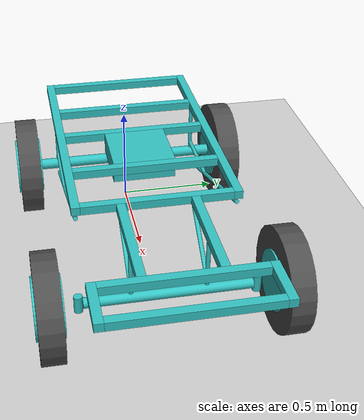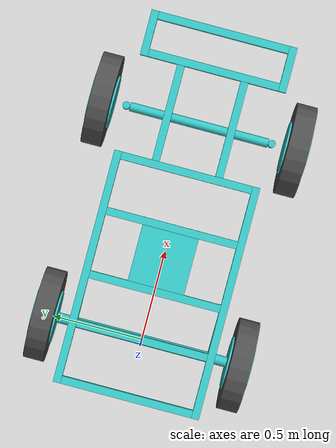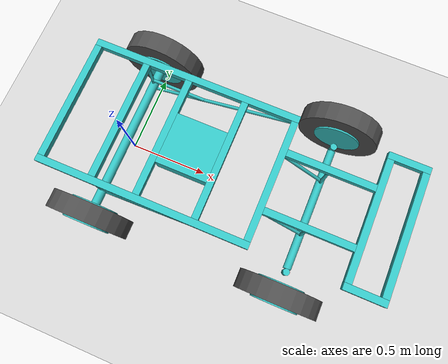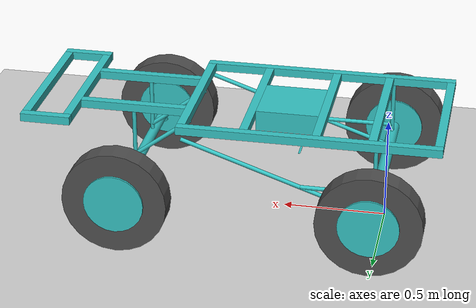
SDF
<sdf version="1.7">
 <world name="default">
  <model name="ground_plane">
   <static>1</static>
   <link name="link">
    <collision name="collision">
     <geometry><plane><normal>0 0 1</normal><size>100 100</size></plane></geometry>
     <surface><friction><ode><mu>100</mu><mu2>50</mu2></ode></friction></surface>
    </collision>
    <visual name="visual">
     <cast_shadows>0</cast_shadows>
     <geometry><plane><normal>0 0 1</normal><size>100 100</size></plane></geometry>
     <material>
      <script><uri>file://media/materials/scripts/gazebo.material</uri><name>Gazebo/Grey</name></script>
     </material>
    </visual>
   </link>
  </model>
  <model name="beetle">
   <link name="base_link">
    <inertial>
     <pose>0.69185 -0 -9.5e-05 0 -0 0</pose>
     <mass>40.02</mass>
     <inertia>
      <ixx>2.03423</ixx>
      <ixy>-7.50105e-20</ixy>
      <ixz>-0.00114323</ixz>
      <iyy>13.2082</iyy>
      <iyz>1.02948e-23</iyz>
      <izz>15.2303</izz>
     </inertia>
    </inertial>
    <collision name="base_link_collision">
     <pose>0.692 0 0 0 -0 0</pose>
     <geometry><box><size>1.99 0.78 0.04</size></box></geometry>
    </collision>
    <visual name="base_link_visual">
     <pose>0.317 0.37 0 0 -0 0</pose>
     <geometry><box><size>1.24 0.04 0.04</size></box></geometry>
     <material>
      <script><name>Gazebo/Turquoise</name><uri>file://media/materials/scripts/gazebo.material</uri></script>
     </material>
    </visual>
    <visual name="base_link_visual_1">
     <pose>0.317 -0.37 0 0 -0 0</pose>
     <geometry><box><size>1.24 0.04 0.04</size></box></geometry>
     <material>
      <script><name>Gazebo/Turquoise</name><uri>file://media/materials/scripts/gazebo.material</uri></script>
     </material>
    </visual>
    <visual name="base_link_visual_2">
     <pose>-0.283 0 0 0 -0 0</pose>
     <geometry><box><size>0.04 0.7 0.04</size></box></geometry>
     <material>
      <script><name>Gazebo/Turquoise</name><uri>file://media/materials/scripts/gazebo.material</uri></script>
     </material>
    </visual>
    <visual name="base_link_visual_3">
     <pose>0.02 0 0 0 -0 0</pose>
     <geometry><box><size>0.04 0.7 0.04</size></box></geometry>
     <material>
      <script><name>Gazebo/Turquoise</name><uri>file://media/materials/scripts/gazebo.material</uri></script>
     </material>
    </visual>
    <visual name="base_link_visual_4">
     <pose>0.281 0 0 0 -0 0</pose>
     <geometry><box><size>0.04 0.7 0.04</size></box></geometry>
     <material>
      <script><name>Gazebo/Turquoise</name><uri>file://media/materials/scripts/gazebo.material</uri></script>
     </material>
    </visual>
    <visual name="base_link_visual_5">
     <pose>0.621 0 0 0 -0 0</pose>
     <geometry><box><size>0.04 0.7 0.04</size></box></geometry>
     <material>
      <script><name>Gazebo/Turquoise</name><uri>file://media/materials/scripts/gazebo.material</uri></script>
     </material>
    </visual>
    <visual name="base_link_visual_6">
     <pose>0.917 0 0 0 -0 0</pose>
     <geometry><box><size>0.04 0.7 0.04</size></box></geometry>
     <material>
      <script><name>Gazebo/Turquoise</name><uri>file://media/materials/scripts/gazebo.material</uri></script>
     </material>
    </visual>
    <visual name="base_link_visual_7">
     <pose>1.192 0.17 0 0 -0 0</pose>
     <geometry><box><size>0.51 0.04 0.04</size></box></geometry>
     <material>
      <script><name>Gazebo/Turquoise</name><uri>file://media/materials/scripts/gazebo.material</uri></script>
     </material>
    </visual>
    <visual name="base_link_visual_8">
     <pose>1.192 -0.17 0 0 -0 0</pose>
     <geometry><box><size>0.51 0.04 0.04</size></box></geometry>
     <material>
      <script><name>Gazebo/Turquoise</name><uri>file://media/materials/scripts/gazebo.material</uri></script>
     </material>
    </visual>
    <visual name="base_link_visual_9">
     <pose>1.567 0.37 0 0 -0 0</pose>
     <geometry><box><size>0.24 0.04 0.04</size></box></geometry>
     <material>
      <script><name>Gazebo/Turquoise</name><uri>file://media/materials/scripts/gazebo.material</uri></script>
     </material>
    </visual>
    <visual name="base_link_visual_10">
     <pose>1.567 -0.37 0 0 -0 0</pose>
     <geometry><box><size>0.24 0.04 0.04</size></box></geometry>
     <material>
      <script><name>Gazebo/Turquoise</name><uri>file://media/materials/scripts/gazebo.material</uri></script>
     </material>
    </visual>
    <visual name="base_link_visual_11">
     <pose>1.467 0 0 0 -0 0</pose>
     <geometry><box><size>0.04 0.7 0.04</size></box></geometry>
     <material>
      <script><name>Gazebo/Turquoise</name><uri>file://media/materials/scripts/gazebo.material</uri></script>
     </material>
    </visual>
    <visual name="base_link_visual_12">
     <pose>1.667 0 0 0 -0 0</pose>
     <geometry><box><size>0.04 0.7 0.04</size></box></geometry>
     <material>
      <script><name>Gazebo/Turquoise</name><uri>file://media/materials/scripts/gazebo.material</uri></script>
     </material>
    </visual>
    <visual name="base_link_visual_13">
     <pose>1.19 0.17 -0.15025 3.14159 -0 3.14159</pose>
     <geometry><cylinder><length>0.2605</length><radius>0.01</radius></cylinder></geometry>
     <material>
      <script><name>Gazebo/Turquoise</name><uri>file://media/materials/scripts/gazebo.material</uri></script>
     </material>
    </visual>
    <visual name="base_link_visual_14">
     <pose>1.19 -0.17 -0.15025 3.14159 -0 3.14159</pose>
     <geometry><cylinder><length>0.2605</length><radius>0.01</radius></cylinder></geometry>
     <material>
      <script><name>Gazebo/Turquoise</name><uri>file://media/materials/scripts/gazebo.material</uri></script>
     </material>
    </visual>
    <visual name="base_link_visual_15">
     <pose>1.053 0.17 -0.1525 3.14159 0.928464 3.14159</pose>
     <geometry><cylinder><length>0.3422</length><radius>0.01</radius></cylinder></geometry>
     <material>
      <script><name>Gazebo/Turquoise</name><uri>file://media/materials/scripts/gazebo.material</uri></script>
     </material>
    </visual>
    <visual name="base_link_visual_16">
     <pose>1.053 -0.17 -0.1525 3.14159 0.928464 3.14159</pose>
     <geometry><cylinder><length>0.3422</length><radius>0.01</radius></cylinder></geometry>
     <material>
      <script><name>Gazebo/Turquoise</name><uri>file://media/materials/scripts/gazebo.material</uri></script>
     </material>
    </visual>
    <visual name="base_link_visual_17">
     <pose>0 0.37 -0.1485 3.14159 -0 3.14159</pose>
     <geometry><cylinder><length>0.257</length><radius>0.01</radius></cylinder></geometry>
     <material>
      <script><name>Gazebo/Turquoise</name><uri>file://media/materials/scripts/gazebo.material</uri></script>
     </material>
    </visual>
    <visual name="base_link_visual_18">
     <pose>0 -0.37 -0.1485 3.14159 -0 3.14159</pose>
     <geometry><cylinder><length>0.257</length><radius>0.01</radius></cylinder></geometry>
     <material>
      <script><name>Gazebo/Turquoise</name><uri>file://media/materials/scripts/gazebo.material</uri></script>
     </material>
    </visual>
    <visual name="base_link_visual_19">
     <pose>0.458 0.37 -0.2075 3.14159 -1.23958 3.14159</pose>
     <geometry><cylinder><length>0.968649</length><radius>0.01</radius></cylinder></geometry>
     <material>
      <script><name>Gazebo/Turquoise</name><uri>file://media/materials/scripts/gazebo.material</uri></script>
     </material>
    </visual>
    <visual name="base_link_visual_20">
     <pose>0.458 -0.37 -0.2075 3.14159 -1.23958 3.14159</pose>
     <geometry><cylinder><length>0.968649</length><radius>0.01</radius></cylinder></geometry>
     <material>
      <script><name>Gazebo/Turquoise</name><uri>file://media/materials/scripts/gazebo.material</uri></script>
     </material>
    </visual>
    <visual name="base_link_visual_21">
     <pose>0.174476 0.37 -0.245 3.14159 -1.57079 3.14159</pose>
     <geometry><cylinder><length>0.348952</length><radius>0.01</radius></cylinder></geometry>
     <material>
      <script><name>Gazebo/Turquoise</name><uri>file://media/materials/scripts/gazebo.material</uri></script>
     </material>
    </visual>
    <visual name="base_link_visual_22">
     <pose>0.174476 -0.37 -0.245 3.14159 -1.57079 3.14159</pose>
     <geometry><cylinder><length>0.348952</length><radius>0.01</radius></cylinder></geometry>
     <material>
      <script><name>Gazebo/Turquoise</name><uri>file://media/materials/scripts/gazebo.material</uri></script>
     </material>
    </visual>
    <visual name="base_link_visual_23">
     <pose>1.19 0 -0.305 1.5708 -0 0</pose>
     <geometry><cylinder><length>0.763</length><radius>0.0245</radius></cylinder></geometry>
     <material>
      <script><name>Gazebo/Turquoise</name><uri>file://media/materials/scripts/gazebo.material</uri></script>
     </material>
    </visual>
    <visual name="base_link_visual_24">
     <pose>0 0 -0.305 1.5708 -0 0</pose>
     <geometry><cylinder><length>0.956</length><radius>0.028</radius></cylinder></geometry>
     <material>
      <script><name>Gazebo/Turquoise</name><uri>file://media/materials/scripts/gazebo.material</uri></script>
     </material>
    </visual>
    <visual name="base_link_visual_25">
     <pose>0.451 0 -0.03 0 -0 0</pose>
     <geometry><box><size>0.3 0.3 0.1</size></box></geometry>
     <material>
      <script><name>Gazebo/Turquoise</name><uri>file://media/materials/scripts/gazebo.material</uri></script>
     </material>
    </visual>
    <visual name="base_link_fixed_joint_lump__gps_link_visual_26">
     <pose>0.391 -0.09 -0.19 0 -0 0</pose>
     <geometry><box><size>0.01 0.01 0.002</size></box></geometry>
     <material>
      <script><name>Gazebo/Turquoise</name><uri>file://media/materials/scripts/gazebo.material</uri></script>
     </material>
    </visual>
    <visual name="base_link_fixed_joint_lump__imu_link_visual_27">
     <pose>0.391 0.09 -0.19 0 -0 0</pose>
     <geometry><box><size>0.01 0.1 0.002</size></box></geometry>
     <material>
      <script><name>Gazebo/Turquoise</name><uri>file://media/materials/scripts/gazebo.material</uri></script>
     </material>
    </visual>
    <sensor name="gps_sensor" type="gps">
     <always_on>1</always_on>
     <update_rate>1</update_rate>
     <plugin name="gps_controller" filename="libgazebo_ros_gps_sensor.so">
      <ros><remapping>gps_controller/out:=gps</remapping></ros>
      <frame_name>gps_link</frame_name>
      <offset>0 0 0</offset>
      <drift>0.001 0.001 0.001</drift>
      <gaussianNoise>0.05 0.05 0.05</gaussianNoise>
      <velocityDrift>0.001 0.001 0.001</velocityDrift>
      <velocityGaussianNoise>0.5 0.5 0.5</velocityGaussianNoise>
     </plugin>
     <pose>0.391 -0.09 -0.19 0 -0 0</pose>
    </sensor>
    <sensor name="imu_sensor" type="imu">
     <plugin name="imu_plugin" filename="libgazebo_ros_imu_sensor.so">
      <ros><remapping>~/out:=/imu</remapping></ros>
      <initial_orientation_as_reference>0</initial_orientation_as_reference>
     </plugin>
     <always_on>1</always_on>
     <update_rate>100</update_rate>
     <visualize>1</visualize>
     <imu>
      <angular_velocity>
       <x>
        <noise type="gaussian">
         <mean>0</mean>
         <stddev>0.0002</stddev>
         <bias_mean>7.5e-06</bias_mean>
         <bias_stddev>8e-07</bias_stddev>
        </noise>
       </x>
       <y>
        <noise type="gaussian">
         <mean>0</mean>
         <stddev>0.0002</stddev>
         <bias_mean>7.5e-06</bias_mean>
         <bias_stddev>8e-07</bias_stddev>
        </noise>
       </y>
       <z>
        <noise type="gaussian">
         <mean>0</mean>
         <stddev>0.0002</stddev>
         <bias_mean>7.5e-06</bias_mean>
         <bias_stddev>8e-07</bias_stddev>
        </noise>
       </z>
      </angular_velocity>
      <linear_acceleration>
       <x>
        <noise type="gaussian">
         <mean>0</mean>
         <stddev>0.017</stddev>
         <bias_mean>0.1</bias_mean>
         <bias_stddev>0.001</bias_stddev>
        </noise>
       </x>
       <y>
        <noise type="gaussian">
         <mean>0</mean>
         <stddev>0.017</stddev>
         <bias_mean>0.1</bias_mean>
         <bias_stddev>0.001</bias_stddev>
        </noise>
       </y>
       <z>
        <noise type="gaussian">
         <mean>0</mean>
         <stddev>0.017</stddev>
         <bias_mean>0.1</bias_mean>
         <bias_stddev>0.001</bias_stddev>
        </noise>
       </z>
      </linear_acceleration>
     </imu>
     <pose>0.391 0.09 -0.19 0 -0 0</pose>
    </sensor>
   </link>
   <joint name="left_steering_joint" type="revolute">
    <pose relative_to="base_link">1.19 0.4015 0 0 -0 0</pose>
    <parent>base_link</parent>
    <child>left_steering_link</child>
    <axis>
     <xyz>0 0 1</xyz>
     <limit><lower>-1</lower><upper>1</upper><effort>1000</effort><velocity>0.5</velocity></limit>
     <dynamics>
      <damping>20</damping>
      <friction>0.5886</friction>
      <spring_reference>0</spring_reference>
      <spring_stiffness>0</spring_stiffness>
     </dynamics>
    </axis>
   </joint>
   <link name="left_steering_link">
    <pose relative_to="left_steering_joint">0 0 0 0 -0 0</pose>
    <inertial>
     <pose>0 0 -0.305 0 -0 0</pose>
     <mass>0.8</mass>
     <inertia>
      <ixx>0.000528267</ixx>
      <ixy>0</ixy>
      <ixz>0</ixz>
      <iyy>0.000528267</iyy>
      <iyz>0</iyz>
      <izz>0.00016</izz>
     </inertia>
    </inertial>
    <visual name="left_steering_link_visual">
     <pose>0 0 -0.305 0 -0 0</pose>
     <geometry><cylinder><length>0.082</length><radius>0.02</radius></cylinder></geometry>
     <material>
      <script><name>Gazebo/Turquoise</name><uri>file://media/materials/scripts/gazebo.material</uri></script>
     </material>
    </visual>
   </link>
   <joint name="front_left_wheel_joint" type="revolute">
    <pose relative_to="left_steering_link">0 0.1315 -0.305 -1.5708 0 0</pose>
    <parent>left_steering_link</parent>
    <child>front_left_wheel_link</child>
    <axis>
     <xyz>0 0 1</xyz>
     <limit><lower>-1e+16</lower><upper>1e+16</upper></limit>
     <dynamics>
      <damping>10</damping>
      <friction>0.5886</friction>
      <spring_reference>0</spring_reference>
      <spring_stiffness>0</spring_stiffness>
     </dynamics>
    </axis>
   </joint>
   <link name="front_left_wheel_link">
    <pose relative_to="front_left_wheel_joint">0 0 0 0 -0 0</pose>
    <inertial>
     <mass>13</mass>
     <inertia>
      <ixx>0.137106</ixx>
      <ixy>0</ixy>
      <ixz>0</ixz>
      <iyy>0.137106</iyy>
      <iyz>0</iyz>
      <izz>0.195995</izz>
     </inertia>
    </inertial>
    <collision name="front_left_wheel_link_collision">
     <geometry><cylinder><length>0.11</length><radius>0.25</radius></cylinder></geometry>
    </collision>
    <visual name="front_left_wheel_link_visual">
     <geometry><cylinder><length>0.11</length><radius>0.25</radius></cylinder></geometry>
     <material>
      <script><name>Gazebo/DarkGrey</name><uri>file://media/materials/scripts/gazebo.material</uri></script>
     </material>
    </visual>
    <visual name="front_left_wheel_link_fixed_joint_lump__front_left_wheel_inner_rim_link_visual_1">
     <pose>0 0 -0.06 0 -0 0</pose>
     <geometry><cylinder><length>0.01</length><radius>0.143</radius></cylinder></geometry>
     <material>
      <script><name>Gazebo/Turquoise</name><uri>file://media/materials/scripts/gazebo.material</uri></script>
     </material>
    </visual>
    <visual name="front_left_wheel_link_fixed_joint_lump__front_left_wheel_outer_rim_link_visual_2">
     <pose>0 0 0.06 0 -0 0</pose>
     <geometry><cylinder><length>0.01</length><radius>0.143</radius></cylinder></geometry>
     <material>
      <script><name>Gazebo/Turquoise</name><uri>file://media/materials/scripts/gazebo.material</uri></script>
     </material>
    </visual>
   </link>
   <joint name="rear_left_wheel_joint" type="revolute">
    <pose relative_to="base_link">0 0.533 -0.305 -1.5708 0 0</pose>
    <parent>base_link</parent>
    <child>rear_left_wheel_link</child>
    <axis>
     <xyz>0 0 1</xyz>
     <limit><lower>-1e+16</lower><upper>1e+16</upper></limit>
     <dynamics>
      <damping>10</damping>
      <friction>0.5886</friction>
      <spring_reference>0</spring_reference>
      <spring_stiffness>0</spring_stiffness>
     </dynamics>
    </axis>
   </joint>
   <link name="rear_left_wheel_link">
    <pose relative_to="rear_left_wheel_joint">0 0 0 0 -0 0</pose>
    <inertial>
     <mass>13</mass>
     <inertia>
      <ixx>0.137106</ixx>
      <ixy>0</ixy>
      <ixz>0</ixz>
      <iyy>0.137106</iyy>
      <iyz>0</iyz>
      <izz>0.195995</izz>
     </inertia>
    </inertial>
    <collision name="rear_left_wheel_link_collision">
     <geometry><cylinder><length>0.11</length><radius>0.25</radius></cylinder></geometry>
    </collision>
    <visual name="rear_left_wheel_link_visual">
     <geometry><cylinder><length>0.11</length><radius>0.25</radius></cylinder></geometry>
     <material>
      <script><name>Gazebo/DarkGrey</name><uri>file://media/materials/scripts/gazebo.material</uri></script>
     </material>
    </visual>
    <visual name="rear_left_wheel_link_fixed_joint_lump__rear_left_wheel_inner_rim_link_visual_1">
     <pose>0 0 -0.06 0 -0 0</pose>
     <geometry><cylinder><length>0.01</length><radius>0.143</radius></cylinder></geometry>
     <material>
      <script><name>Gazebo/Turquoise</name><uri>file://media/materials/scripts/gazebo.material</uri></script>
     </material>
    </visual>
    <visual name="rear_left_wheel_link_fixed_joint_lump__rear_left_wheel_outer_rim_link_visual_2">
     <pose>0 0 0.06 0 -0 0</pose>
     <geometry><cylinder><length>0.01</length><radius>0.143</radius></cylinder></geometry>
     <material>
      <script><name>Gazebo/Turquoise</name><uri>file://media/materials/scripts/gazebo.material</uri></script>
     </material>
    </visual>
   </link>
   <joint name="rear_right_wheel_joint" type="revolute">
    <pose relative_to="base_link">0 -0.533 -0.305 -1.5708 0 0</pose>
    <parent>base_link</parent>
    <child>rear_right_wheel_link</child>
    <axis>
     <xyz>0 0 1</xyz>
     <limit><lower>-1e+16</lower><upper>1e+16</upper></limit>
     <dynamics>
      <damping>10</damping>
      <friction>0.5886</friction>
      <spring_reference>0</spring_reference>
      <spring_stiffness>0</spring_stiffness>
     </dynamics>
    </axis>
   </joint>
   <link name="rear_right_wheel_link">
    <pose relative_to="rear_right_wheel_joint">0 0 0 0 -0 0</pose>
    <inertial>
     <mass>13</mass>
     <inertia>
      <ixx>0.137106</ixx>
      <ixy>0</ixy>
      <ixz>0</ixz>
      <iyy>0.137106</iyy>
      <iyz>0</iyz>
      <izz>0.195995</izz>
     </inertia>
    </inertial>
    <collision name="rear_right_wheel_link_collision">
     <geometry><cylinder><length>0.11</length><radius>0.25</radius></cylinder></geometry>
    </collision>
    <visual name="rear_right_wheel_link_visual">
     <geometry><cylinder><length>0.11</length><radius>0.25</radius></cylinder></geometry>
     <material>
      <script><name>Gazebo/DarkGrey</name><uri>file://media/materials/scripts/gazebo.material</uri></script>
     </material>
    </visual>
    <visual name="rear_right_wheel_link_fixed_joint_lump__rear_right_wheel_inner_rim_link_visual_1">
     <pose>0 0 0.06 0 -0 0</pose>
     <geometry><cylinder><length>0.01</length><radius>0.143</radius></cylinder></geometry>
     <material>
      <script><name>Gazebo/Turquoise</name><uri>file://media/materials/scripts/gazebo.material</uri></script>
     </material>
    </visual>
    <visual name="rear_right_wheel_link_fixed_joint_lump__rear_right_wheel_outer_rim_link_visual_2">
     <pose>0 0 -0.06 0 -0 0</pose>
     <geometry><cylinder><length>0.01</length><radius>0.143</radius></cylinder></geometry>
     <material>
      <script><name>Gazebo/Turquoise</name><uri>file://media/materials/scripts/gazebo.material</uri></script>
     </material>
    </visual>
   </link>
   <joint name="right_steering_joint" type="revolute">
    <pose relative_to="base_link">1.19 -0.4015 0 0 -0 0</pose>
    <parent>base_link</parent>
    <child>right_steering_link</child>
    <axis>
     <xyz>0 0 1</xyz>
     <limit><lower>-1</lower><upper>1</upper><effort>1000</effort><velocity>0.5</velocity></limit>
     <dynamics>
      <damping>20</damping>
      <friction>0.5886</friction>
      <spring_reference>0</spring_reference>
      <spring_stiffness>0</spring_stiffness>
     </dynamics>
    </axis>
   </joint>
   <link name="right_steering_link">
    <pose relative_to="right_steering_joint">0 0 0 0 -0 0</pose>
    <inertial>
     <pose>0 0 -0.305 0 -0 0</pose>
     <mass>0.8</mass>
     <inertia>
      <ixx>0.000528267</ixx>
      <ixy>0</ixy>
      <ixz>0</ixz>
      <iyy>0.000528267</iyy>
      <iyz>0</iyz>
      <izz>0.00016</izz>
     </inertia>
    </inertial>
    <visual name="right_steering_link_visual">
     <pose>0 0 -0.305 0 -0 0</pose>
     <geometry><cylinder><length>0.082</length><radius>0.02</radius></cylinder></geometry>
     <material>
      <script><name>Gazebo/Turquoise</name><uri>file://media/materials/scripts/gazebo.material</uri></script>
     </material>
    </visual>
   </link>
   <joint name="front_right_wheel_joint" type="revolute">
    <pose relative_to="right_steering_link">0 -0.1315 -0.305 -1.5708 0 0</pose>
    <parent>right_steering_link</parent>
    <child>front_right_wheel_link</child>
    <axis>
     <xyz>0 0 1</xyz>
     <limit><lower>-1e+16</lower><upper>1e+16</upper></limit>
     <dynamics>
      <damping>10</damping>
      <friction>0.5886</friction>
      <spring_reference>0</spring_reference>
      <spring_stiffness>0</spring_stiffness>
     </dynamics>
    </axis>
   </joint>
   <link name="front_right_wheel_link">
    <pose relative_to="front_right_wheel_joint">0 0 0 0 -0 0</pose>
    <inertial>
     <mass>13</mass>
     <inertia>
      <ixx>0.137106</ixx>
      <ixy>0</ixy>
      <ixz>0</ixz>
      <iyy>0.137106</iyy>
      <iyz>0</iyz>
      <izz>0.195995</izz>
     </inertia>
    </inertial>
    <collision name="front_right_wheel_link_collision">
     <geometry><cylinder><length>0.11</length><radius>0.25</radius></cylinder></geometry>
    </collision>
    <visual name="front_right_wheel_link_visual">
     <geometry><cylinder><length>0.11</length><radius>0.25</radius></cylinder></geometry>
     <material>
      <script><name>Gazebo/DarkGrey</name><uri>file://media/materials/scripts/gazebo.material</uri></script>
     </material>
    </visual>
    <visual name="front_right_wheel_link_fixed_joint_lump__front_right_wheel_inner_rim_link_visual_1">
     <pose>0 0 0.06 0 -0 0</pose>
     <geometry><cylinder><length>0.01</length><radius>0.143</radius></cylinder></geometry>
     <material>
      <script><name>Gazebo/Turquoise</name><uri>file://media/materials/scripts/gazebo.material</uri></script>
     </material>
    </visual>
    <visual name="front_right_wheel_link_fixed_joint_lump__front_right_wheel_outer_rim_link_visual_2">
     <pose>0 0 -0.06 0 -0 0</pose>
     <geometry><cylinder><length>0.01</length><radius>0.143</radius></cylinder></geometry>
     <material>
      <script><name>Gazebo/Turquoise</name><uri>file://media/materials/scripts/gazebo.material</uri></script>
     </material>
    </visual>
   </link>
   <static>0</static>
   <plugin name="gazebo_ros2_control" filename="libgazebo_ros2_control.so">
    <robot_param>robot_description</robot_param>
    <robot_param_node>robot_state_publisher</robot_param_node>
    <parameters>/home/eashan/ros_temp/install/beetle_navigation2/share/beetle_navigation2/config/navigation_params.yaml</parameters>
   </plugin>
   <pose>0.01708 -0.000248 0.555 2e-06 3.2e-05 0.000383</pose>
  </model>
 </world>
</sdf>
